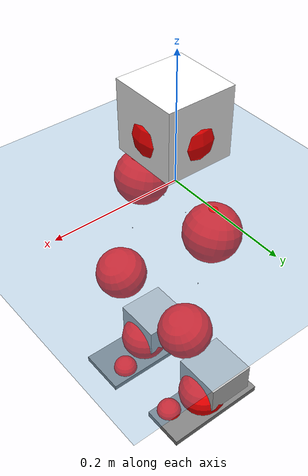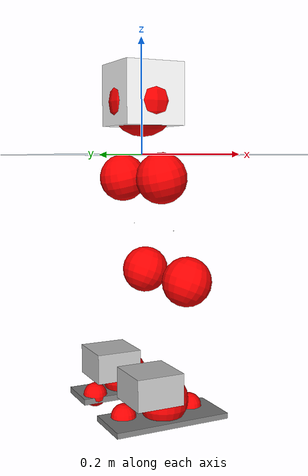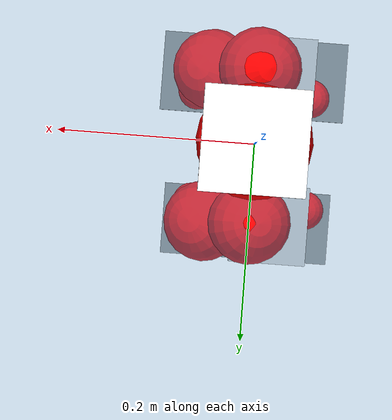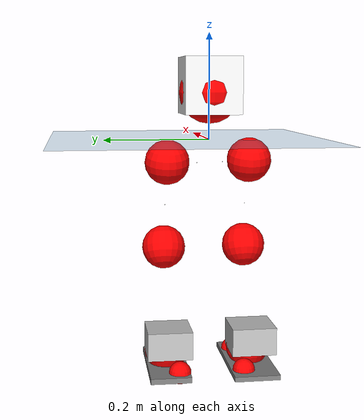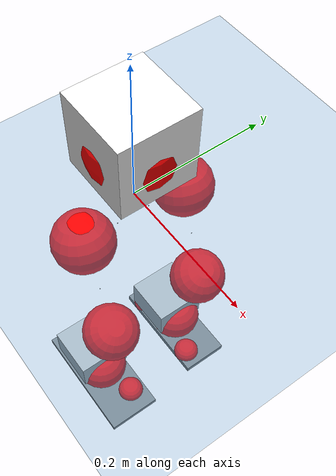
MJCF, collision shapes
<mujoco model="pi_12dof_release_v1">
  <compiler angle="radian" assetdir="assets" balanceinertia="true" inertiafromgeom="false"/>

  <option timestep="0.005" density="1.2" viscosity="2e-05"/>

  <size nkey="1"/>

  <visual>
    <quality shadowsize="8192"/>
    <map shadowclip="0.5"/>
  </visual>

  <default>
    <default class="/">
      <joint armature="0.01" damping="0.01" frictionloss="0.01"/>
      <geom contype="0" conaffinity="0" group="1" solref="-1000 -80"/>
      <site size="0.01 0.005 0.005" group="5"/>
      <general forcelimited="true" biastype="affine" gainprm="20" biasprm="0 -20 -0.5"/>
      <default class="foot">
        <geom size="0.0845 0.036 0.005" type="box" condim="6" group="4" priority="1" friction="0.9 0.2 0.2" solimp="0.015 1 0.005"/>
      </default>
      <default class="reward_collision_sphere">
        <geom group="5" rgba="1 0 0 1"/>
      </default>
    </default>
  </default>

  <asset>
    <texture type="skybox" colorspace="auto" name="//unnamed_texture_0" builtin="gradient" rgb1="0.95 0.95 0.95" rgb2="0.95 0.95 0.95" width="100" height="600"/>
    <texture type="2d" colorspace="auto" name="texplane" builtin="checker" rgb1="0.345 0.575 0.748" rgb2="0.345 0.575 0.748" markrgb="1 1 1" width="512" height="512"/>
    <material name="MatPlane" class="/" texture="texplane" texuniform="true" texrepeat="2 2" specular="0.9"/>
    <mesh name="baselink_1" class="/" file="baselink_1.STL"/>
    <mesh name="r_hip_pitch_link" class="/" file="r_hip_pitch_link.STL"/>
    <mesh name="r_hip_roll_link" class="/" file="r_hip_roll_link.STL"/>
    <mesh name="r_thigh_link" class="/" file="r_thigh_link.STL"/>
    <mesh name="r_calf_link" class="/" file="r_calf_link.STL"/>
    <mesh name="r_ankle_pitch_link" class="/" file="r_ankle_pitch_link.STL"/>
    <mesh name="r_ankle_roll_link" class="/" file="r_ankle_roll_link.STL"/>
    <mesh name="l_hip_pitch_link" class="/" file="l_hip_pitch_link.STL"/>
    <mesh name="l_hip_roll_link" class="/" file="l_hip_roll_link.STL"/>
    <mesh name="l_thigh_link" class="/" file="l_thigh_link.STL"/>
    <mesh name="l_calf_link" class="/" file="l_calf_link.STL"/>
    <mesh name="l_ankle_pitch_link" class="/" file="l_ankle_pitch_link.STL"/>
    <mesh name="l_ankle_roll_link" class="/" file="l_ankle_roll_link.STL"/>
  </asset>

  <worldbody>
    <geom name="floor" class="/" size="100 100 0.125" type="plane" group="0" material="MatPlane"/>
    <light name="toplight_shadow" class="/" pos="0 0 5" dir="0.0990148 0.0990148 -0.990148" type="directional" ambient="0.04 0.04 0.04" diffuse="0.55 0.55 0.55" specular="0.12 0.12 0.12"/>
    <light name="toplight_fill" class="/" pos="0 0 5" dir="0.0990148 0.0990148 -0.990148" type="directional" castshadow="false" ambient="0.04 0.04 0.04" diffuse="0.3 0.3 0.3" specular="0.08 0.08 0.08"/>
    <body name="trunk" pos="0.00115636 -0.00169237 -0.00271516" quat="1 -0.000271509 -0.000163756 -0.000210573">
      <inertial pos="0.00392409 -0.00304938 0.0536094" quat="0.698085 0.00217308 -0.00115599 0.716011" mass="2.75281" diaginertia="0.00650552 0.00792355 0.0162522"/>
      <joint name="//unnamed_joint_0" type="free"/>
      <geom name="//unnamed_geom_1" class="/" type="mesh" density="0" rgba="1 1 1 1" mesh="baselink_1"/>
      <geom name="//unnamed_geom_2" class="/" size="0.0534737 0.0534737 0.0534737" pos="0 0 0.104828" type="box" rgba="1 1 1 1"/>
      <geom name="//unnamed_geom_3" class="reward_collision_sphere" size="0.0588211" pos="0 0 0.0917244"/>
      <site name="imu" class="/" pos="-0.00472695 0.0133342 -0.0113003" size="0.0106947"/>
      <camera name="track" class="/" pos="0 -1.94601 0" quat="0.707107 0.707107 0 0" mode="trackcom"/>
      <camera name="ego_camera" class="/" pos="0.0693802 0 0.235863" quat="-0.5 -0.5 0.5 0.5"/>
      <body name="r_hip_pitch_link" pos="-0.00189527 -0.0247208 -0.0400561" quat="0.992215 -0.000507314 -0.124534 9.92119e-05">
        <inertial pos="0.00279464 -0.0567333 -0.00278898" quat="-0.0194328 0.70834 -0.0281194 0.705044" mass="0.449532" diaginertia="7.26388e-05 8.6324e-05 0.000331309"/>
        <joint name="r_hip_pitch_joint" class="/" pos="0 0 0" axis="-0.00208734 -0.999963 0.0083272" stiffness="0.0126001" range="-1.75536 1.29963" armature="0.0107018" damping="0.0119522" frictionloss="0.01155"/>
        <geom name="//unnamed_geom_4" class="/" type="mesh" density="0" rgba="0.75294 0.75294 0.75294 1" mesh="r_hip_pitch_link"/>
        <geom name="//unnamed_geom_5" class="/" size="0.000534737 0.000534737 0.000534737" type="box" rgba="0.75294 0.75294 0.75294 1"/>
        <body name="r_hip_roll_link" pos="0.000629801 -0.052015 0.00276989" quat="1 2.10131e-05 -3.97379e-05 -2.73878e-05">
          <inertial pos="-0.00290557 -0.000205767 -0.0798415" quat="0.706379 -0.0807054 -0.0837472 0.698214" mass="0.460789" diaginertia="0.000225627 0.000248225 0.000477335"/>
          <joint name="r_hip_roll_joint" class="/" pos="0 0 0" axis="-1 -5.41203e-05 -0.000180735" stiffness="0.00382414" range="-0.132647 0.549472" armature="0.0108795" damping="0.00367173" frictionloss="0.010204"/>
          <geom name="//unnamed_geom_6" class="/" type="mesh" density="0" rgba="0.75294 0.75294 0.75294 1" mesh="r_hip_roll_link"/>
          <geom name="//unnamed_geom_7" class="/" size="0.000534737 0.000534737 0.000534737" type="box" rgba="0.75294 0.75294 0.75294 1"/>
          <geom name="//unnamed_geom_8" class="reward_collision_sphere" size="0.042779"/>
          <body name="r_thigh_link" pos="0.00110399 0.00273504 -0.091077" quat="1 -0.00085877 -0.000204089 -0.000393067">
            <inertial pos="0.00239453 0.00347048 -0.0635709" quat="0.737315 0.675549 5.33332e-05 -4.96947e-05" mass="0.141525" diaginertia="8.17598e-05 8.50504e-05 0.0002178"/>
            <joint name="r_thigh_joint" class="/" pos="0 0 0" axis="0.00425356 -0.00059554 -0.999991" stiffness="0.011461" range="-0.308318 0.63665" armature="0.0105572" damping="0.0203256" frictionloss="0.0110221"/>
            <geom name="//unnamed_geom_9" class="/" type="mesh" density="0" rgba="0.75294 0.75294 0.75294 1" mesh="r_thigh_link"/>
            <geom name="//unnamed_geom_10" class="/" size="0.000534737 0.000534737 0.000534737" type="box" rgba="0.75294 0.75294 0.75294 1"/>
            <body name="r_calf_link" pos="0.00128783 -0.00278151 -0.0911493" quat="0.947387 0.000338512 0.320087 -0.0010629">
              <inertial pos="0.000674615 0.00157234 -0.0916054" quat="0.99996 -0.00661388 -0.00112973 0.00589298" mass="0.98087" diaginertia="0.00240786 0.00304936 0.000670657"/>
              <joint name="r_calf_joint" class="/" pos="0 0 0" axis="0.00432598 -0.99999 0.00149284" range="-1.63843 0.645022" armature="0.00949725" damping="0.0149065" frictionloss="0.00966255"/>
              <geom name="//unnamed_geom_11" class="/" type="mesh" density="0" rgba="0.75294 0.75294 0.75294 1" mesh="r_calf_link"/>
              <geom name="//unnamed_geom_12" class="/" size="0.000534737 0.000534737 0.000534737" type="box" rgba="0.75294 0.75294 0.75294 1"/>
              <geom name="//unnamed_geom_13" class="reward_collision_sphere" size="0.042779"/>
              <body name="r_ankle_pitch_link" pos="0.00138769 -0.00157403 -0.183589" quat="0.980126 -0.000223376 -0.198375 0.000194081">
                <inertial pos="0.0028526 0.00533498 -0.00260058" quat="-0.00111106 0.708049 -0.00252274 0.706158" mass="0.213236" diaginertia="0.000200122 0.000180603 0.000442755"/>
                <joint name="r_ankle_pitch_joint" class="/" pos="0 0 0" axis="0.00852205 -0.999963 -0.000944298" stiffness="0.00691816" range="-1.31333 0.522509" armature="0.0102007" damping="0.0118298" frictionloss="0.00971754"/>
                <geom name="//unnamed_geom_14" class="/" type="mesh" density="0" rgba="0.75294 0.75294 0.75294 1" mesh="r_ankle_pitch_link"/>
                <geom name="//unnamed_geom_15" class="/" size="0.0417095 0.042779 0.0267369" type="box" rgba="0.75294 0.75294 0.75294 1"/>
                <body name="r_ankle_roll_link" pos="0.0715475 0.00118038 -0.000518227" quat="1 1.62919e-05 -1.4518e-05 5.57873e-06">
                  <inertial pos="-0.0193239 -0.000199929 -0.0212782" quat="0.562692 0.429878 0.43181 0.558679" mass="0.657141" diaginertia="0.0007757 0.000889177 0.00109185"/>
                  <joint name="r_ankle_roll_joint" class="/" pos="0 0 0" axis="-0.999896 0.00409415 0.0138057" range="-0.147352 0.140778" armature="0.0114229" damping="0" frictionloss="0.0102234"/>
                  <geom name="//unnamed_geom_16" class="/" type="mesh" density="0" rgba="0.75294 0.75294 0.75294 1" mesh="r_ankle_roll_link"/>
                  <geom name="//unnamed_geom_17" class="/" type="mesh" rgba="0.75294 0.75294 0.75294 1" mesh="r_ankle_roll_link"/>
                  <geom name="right_foot" class="foot" size="0.101562 0.0436222 0.00472549" pos="-0.0471785 0 -0.0576554"/>
                  <geom name="//unnamed_geom_19" class="reward_collision_sphere" size="0.042779" pos="-0.0462535 0 -0.026207"/>
                  <geom name="//unnamed_geom_20" class="reward_collision_sphere" size="0.0213895" pos="0.013876 0.0194601 -0.052414"/>
                  <geom name="//unnamed_geom_21" class="reward_collision_sphere" size="0.0213895" pos="-0.111008 0.0194601 -0.052414"/>
                  <site name="right_foot" class="foot" pos="-0.0471785 0 -0.0576554" size="0.0106947"/>
                </body>
              </body>
            </body>
          </body>
        </body>
      </body>
      <body name="l_hip_pitch_link" pos="-0.00231324 0.0248923 -0.0411786" quat="0.992226 0.00140142 -0.124439 0.000253487">
        <inertial pos="-0.000382209 0.0502917 -0.000756046" quat="-0.0384269 0.705845 0.0293417 0.706714" mass="0.483159" diaginertia="8.59696e-05 9.24484e-05 0.000375132"/>
        <joint name="l_hip_pitch_joint" class="/" pos="0 0 0" axis="-0.00797401 0.999965 -0.00246944" range="-1.19977 1.73133" armature="0.0113401" damping="0.00311245" frictionloss="0.0121584"/>
        <geom name="//unnamed_geom_22" class="/" type="mesh" density="0" rgba="0.75294 0.75294 0.75294 1" mesh="l_hip_pitch_link"/>
        <geom name="//unnamed_geom_23" class="/" size="0.000534737 0.000534737 0.000534737" type="box" rgba="0.75294 0.75294 0.75294 1"/>
        <body name="l_hip_roll_link" pos="0.000494806 0.0571898 0.0011678" quat="1 -7.64978e-05 -9.78989e-05 -0.000346496">
          <inertial pos="-0.00201965 -0.000575912 -0.0817319" quat="0.699332 -0.0751788 -0.0782633 0.706511" mass="0.471839" diaginertia="0.000232048 0.000238725 0.000511801"/>
          <joint name="l_hip_roll_joint" class="/" pos="0 0 0" axis="-0.999926 0.0116083 0.00365666" range="-0.550147 0.0610457" armature="0.0113253" damping="0.0187716" frictionloss="0.012112"/>
          <geom name="//unnamed_geom_24" class="/" type="mesh" density="0" rgba="0.75294 0.75294 0.75294 1" mesh="l_hip_roll_link"/>
          <geom name="//unnamed_geom_25" class="/" size="0.000534737 0.000534737 0.000534737" type="box" rgba="0.75294 0.75294 0.75294 1"/>
          <geom name="//unnamed_geom_26" class="reward_collision_sphere" size="0.042779"/>
          <body name="l_thigh_link" pos="0.00162483 0.0014464 -0.0883779" quat="1 -0.000343889 -9.76629e-05 -2.06622e-05">
            <inertial pos="0.00082665 -0.00157242 -0.0598556" quat="0.675379 0.737468 -0.00166667 -0.00157181" mass="0.138639" diaginertia="8.42918e-05 8.11675e-05 0.000224232"/>
            <joint name="l_thigh_joint" class="/" pos="0 0 0" axis="-0.00045115 0.00767417 -0.99997" range="-0.592728 0.279976" armature="0.00922566" damping="0.00876602" frictionloss="0.0103144"/>
            <geom name="//unnamed_geom_27" class="/" type="mesh" density="0" rgba="0.75294 0.75294 0.75294 1" mesh="l_thigh_link"/>
            <geom name="//unnamed_geom_28" class="/" size="0.000534737 0.000534737 0.000534737" type="box" rgba="0.75294 0.75294 0.75294 1"/>
            <body name="l_calf_link" pos="-1.97395e-05 0.000359771 -0.0914971" quat="0.947719 0.000115557 0.319105 -0.000746166">
              <inertial pos="0.000421437 0.00452621 -0.0920772" quat="0.999976 0.00271443 0.000495668 0.00641481" mass="1.00473" diaginertia="0.00248465 0.00316919 0.000658862"/>
              <joint name="l_calf_joint" class="/" pos="0 0 0" axis="0.000785389 0.999993 -0.00359887" range="-0.676542 1.66796" armature="0.0115104" damping="0.0104791" frictionloss="0.00999201"/>
              <geom name="//unnamed_geom_29" class="/" type="mesh" density="0" rgba="0.75294 0.75294 0.75294 1" mesh="l_calf_link"/>
              <geom name="//unnamed_geom_30" class="/" size="0.000534737 0.000534737 0.000534737" type="box" rgba="0.75294 0.75294 0.75294 1"/>
              <geom name="//unnamed_geom_31" class="reward_collision_sphere" size="0.042779"/>
              <body name="l_ankle_pitch_link" pos="-0.000602341 -0.000899734 -0.184278" quat="0.980166 0.000909008 -0.198176 0.000922114">
                <inertial pos="0.00406913 -0.0034895 -0.000887554" quat="-0.00216326 0.707315 0.00147284 0.706894" mass="0.201014" diaginertia="0.000194544 0.000187758 0.000449293"/>
                <joint name="l_ankle_pitch_joint" class="/" pos="0 0 0" axis="-0.000747051 0.999978 -0.0065699" range="-0.539273 1.30225" armature="0.0106119" damping="0.0134344" frictionloss="0.0121553"/>
                <geom name="//unnamed_geom_32" class="/" type="mesh" density="0" rgba="0.75294 0.75294 0.75294 1" mesh="l_ankle_pitch_link"/>
                <geom name="//unnamed_geom_33" class="/" size="0.0417095 0.042779 0.0267369" type="box" rgba="0.75294 0.75294 0.75294 1"/>
                <body name="l_ankle_roll_link" pos="0.0724966 0.000762794 0.000624429" quat="1 0.00026334 4.4677e-05 -0.000772697">
                  <inertial pos="-0.0242808 0.00124722 -0.0164333" quat="0.559167 0.440748 0.425087 0.558905" mass="0.630785" diaginertia="0.000804828 0.00089851 0.00114078"/>
                  <joint name="l_ankle_roll_joint" class="/" pos="0 0 0" axis="-0.99999 0.00418007 0.00143276" range="-0.201541 0.150166" armature="0.0103923" damping="0.0222053" frictionloss="0.0118162"/>
                  <geom name="//unnamed_geom_34" class="/" type="mesh" density="0" rgba="0.75294 0.75294 0.75294 1" mesh="l_ankle_roll_link"/>
                  <geom name="//unnamed_geom_35" class="/" type="mesh" rgba="0.75294 0.75294 0.75294 1" mesh="l_ankle_roll_link"/>
                  <geom name="left_foot" class="foot" size="0.0917475 0.038786 0.00534991" pos="-0.0471785 0 -0.0576554"/>
                  <geom name="//unnamed_geom_37" class="reward_collision_sphere" size="0.042779" pos="-0.0462535 0 -0.026207"/>
                  <geom name="//unnamed_geom_38" class="reward_collision_sphere" size="0.0213895" pos="0.013876 -0.0194601 -0.052414"/>
                  <geom name="//unnamed_geom_39" class="reward_collision_sphere" size="0.0213895" pos="-0.111008 -0.0194601 -0.052414"/>
                  <site name="left_foot" class="foot" pos="-0.0471785 0 -0.0576554" size="0.0106947"/>
                </body>
              </body>
            </body>
          </body>
        </body>
      </body>
    </body>
  </worldbody>

  <contact>
    <pair class="/" geom1="floor" geom2="right_foot" name="//unnamed_contact_1"/>
    <pair class="/" geom1="floor" geom2="left_foot" name="//unnamed_contact_0"/>
  </contact>

  <actuator>
    <general name="r_hip_pitch_joint" class="/" joint="r_hip_pitch_joint" forcerange="-21.0736 21.0736" gainprm="21.905" biasprm="0 -21.905 -0.499986"/>
    <general name="r_hip_roll_joint" class="/" joint="r_hip_roll_joint" forcerange="-22.1121 22.1121" gainprm="21.905" biasprm="0 -21.905 -0.499986"/>
    <general name="r_thigh_joint" class="/" joint="r_thigh_joint" forcerange="-22.4215 22.4215" gainprm="21.905" biasprm="0 -21.905 -0.499986"/>
    <general name="r_calf_joint" class="/" joint="r_calf_joint" forcerange="-21.3101 21.3101" gainprm="21.905" biasprm="0 -21.905 -0.499986"/>
    <general name="r_ankle_pitch_joint" class="/" joint="r_ankle_pitch_joint" forcerange="-23.7585 23.7585" gainprm="21.905" biasprm="0 -21.905 -0.499986"/>
    <general name="r_ankle_roll_joint" class="/" joint="r_ankle_roll_joint" forcerange="-21.1947 21.1947" gainprm="21.905" biasprm="0 -21.905 -0.499986"/>
    <general name="l_hip_pitch_joint" class="/" joint="l_hip_pitch_joint" forcerange="-23.0338 23.0338" gainprm="21.905" biasprm="0 -21.905 -0.499986"/>
    <general name="l_hip_roll_joint" class="/" joint="l_hip_roll_joint" forcerange="-20.3147 20.3147" gainprm="21.905" biasprm="0 -21.905 -0.499986"/>
    <general name="l_thigh_joint" class="/" joint="l_thigh_joint" forcerange="-22.2434 22.2434" gainprm="21.905" biasprm="0 -21.905 -0.499986"/>
    <general name="l_calf_joint" class="/" joint="l_calf_joint" forcerange="-20.7746 20.7746" gainprm="21.905" biasprm="0 -21.905 -0.499986"/>
    <general name="l_ankle_pitch_joint" class="/" joint="l_ankle_pitch_joint" forcerange="-22.1383 22.1383" gainprm="21.905" biasprm="0 -21.905 -0.499986"/>
    <general name="l_ankle_roll_joint" class="/" joint="l_ankle_roll_joint" forcerange="-21.336 21.336" gainprm="21.905" biasprm="0 -21.905 -0.499986"/>
  </actuator>

  <sensor>
    <gyro site="imu" name="imu_angular_velocity"/>
    <velocimeter site="imu" name="imu_linear_velocity"/>
    <framelinvel objtype="site" objname="left_foot" name="left_foot_global_linear_velocity"/>
    <framelinvel objtype="site" objname="right_foot" name="right_foot_global_linear_velocity"/>
  </sensor>

  <keyframe>
    <key name="home" qpos="0 0 0.291 1 0 0 0 0.4 0 0 -0.8 0.4 0 -0.4 0 0 0.8 -0.4 0"/>
  </keyframe>
</mujoco>
